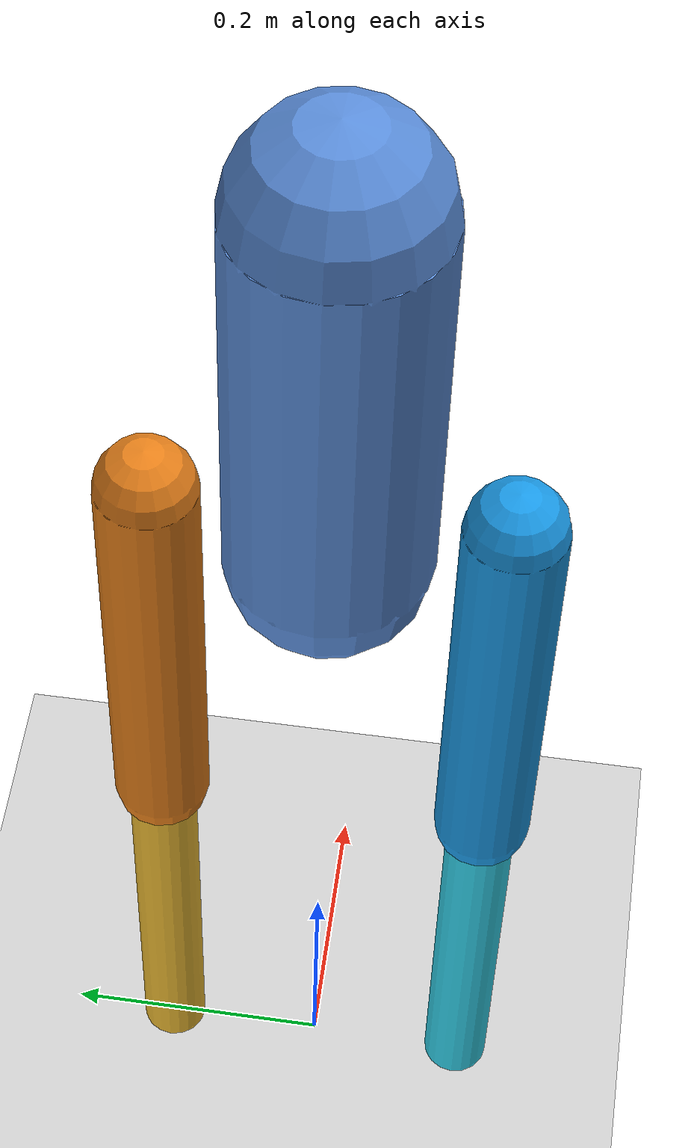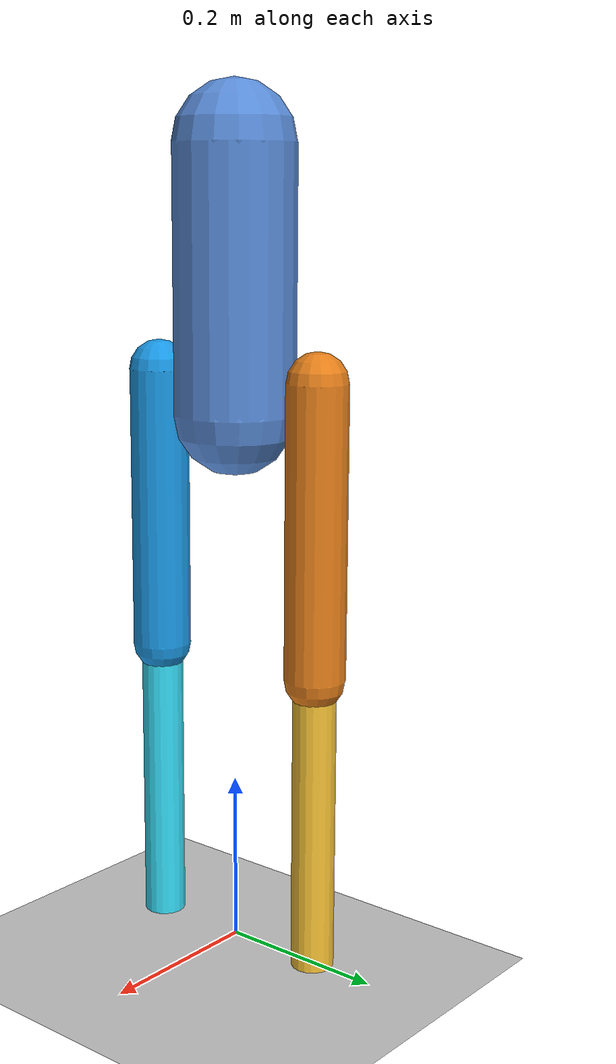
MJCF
<mujoco model="g1_5link_3d">

  <option gravity="0 0 -9.81"/>

  <worldbody>

    <geom name="floor" type="plane" size="5 5 0.1" rgba="0.8 0.8 0.8 1" contype="1" conaffinity="1"/>

    <body name="pelvis" pos="0 0 0.689">
      <freejoint name="root_joint"/>
      <inertial pos="0 0 0" mass="22.34"
                fullinertia="2.510 2.209 0.346  0.000 0.058 -0.001"/>

      <!-- LEFT LEG -->
      <body name="l_hip_roll_link" pos="0 0.1185 -0.006">
        <inertial pos="0 0 0" mass="0.001"
                  diaginertia="1e-6 1e-6 1e-6"/>
        <joint name="l_hip_roll" type="hinge" axis="1 0 0"
               range="-0.5 0.5" damping="1.0"/>
        <geom type="sphere" size="0.03" rgba="0.9 0.5 0.1 0.8"/>

        <body name="l_thigh" pos="0 0 0">
          <inertial pos="0 0 -0.1675" mass="3.0"
                    diaginertia="0.0300 0.0300 0.00375"/>
          <joint name="l_hip_pitch" type="hinge" axis="0 1 0"
                 range="-2.5307 2.8798" damping="1.0"/>
          <geom type="capsule" fromto="0 0 0  0 0 -0.335" size="0.035"
                rgba="0.9 0.5 0.1 0.9"/>

          <body name="l_shank" pos="0 0 -0.335">
            <inertial pos="0 0 -0.174" mass="2.5"
                      diaginertia="0.0262 0.0262 0.00200"/>
            <joint name="l_knee_pitch" type="hinge" axis="0 1 0"
                   range="-0.0873 2.8798" damping="1.0"/>
            <geom type="capsule" fromto="0 0 0  0 0 -0.348" size="0.025"
                  rgba="0.95 0.75 0.2 0.9"/>
            <site name="l_foot" pos="0 0 -0.348" size="0.02"/>
          </body>
        </body>
      </body>

      <!-- RIGHT LEG -->
      <body name="r_hip_roll_link" pos="0 -0.1185 -0.006">
        <inertial pos="0 0 0" mass="0.001"
                  diaginertia="1e-6 1e-6 1e-6"/>
        <joint name="r_hip_roll" type="hinge" axis="1 0 0"
               range="-0.5 0.5" damping="1.0"/>
        <geom type="sphere" size="0.03" rgba="0.1 0.6 0.9 0.8"/>

        <body name="r_thigh" pos="0 0 0">
          <inertial pos="0 0 -0.1675" mass="3.0"
                    diaginertia="0.0300 0.0300 0.00375"/>
          <joint name="r_hip_pitch" type="hinge" axis="0 1 0"
                 range="-2.5307 2.8798" damping="1.0"/>
          <geom type="capsule" fromto="0 0 0  0 0 -0.335" size="0.035"
                rgba="0.1 0.6 0.9 0.9"/>

          <body name="r_shank" pos="0 0 -0.335">
            <inertial pos="0 0 -0.174" mass="2.5"
                      diaginertia="0.0262 0.0262 0.00200"/>
            <joint name="r_knee_pitch" type="hinge" axis="0 1 0"
                   range="-0.0873 2.8798" damping="1.0"/>
            <geom type="capsule" fromto="0 0 0  0 0 -0.348" size="0.025"
                  rgba="0.2 0.85 0.95 0.9"/>
            <site name="r_foot" pos="0 0 -0.348" size="0.02"/>
          </body>
        </body>
      </body>

      <!-- torso capsule (visual only) -->
      <geom type="capsule" fromto="0 0 -0.05  0 0 0.25" size="0.07"
            rgba="0.35 0.55 0.85 0.9" contype="0" conaffinity="0"/>

    </body>

  </worldbody>

</mujoco>
